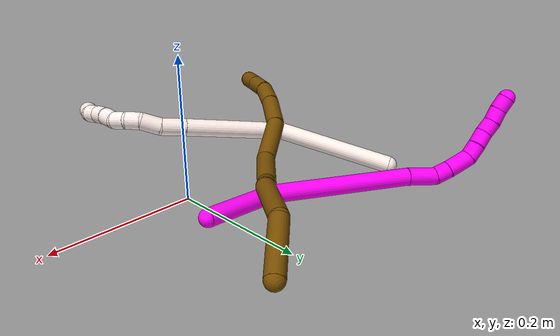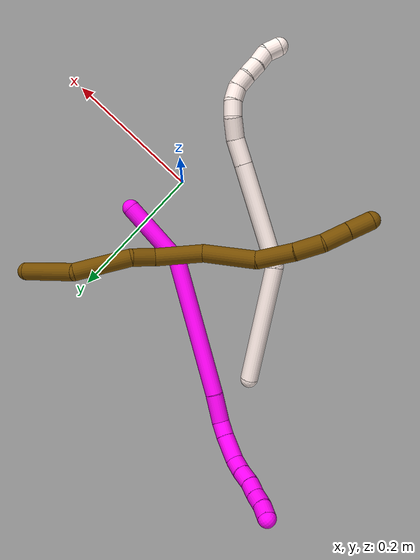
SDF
<sdf version="1.7">
 <world name="default">
  <model name="photoneo_s_sensor">
   <static>1</static>
   <pose>0 0 2 1.57079 1.57079 3.14159</pose>
   <link name="link">
    <inertial><mass>0.1</mass></inertial>
    <sensor name="sensor" type="depth">
     <update_rate>30</update_rate>
     <camera>
      <horizontal_fov>1.22</horizontal_fov>
      <image><width>1920</width><height>1200</height><format>B8G8R8</format></image>
      <clip><near>0.1</near><far>4</far></clip>
      <depth_camera><output>points</output></depth_camera>
     </camera>
     <plugin name="camera_plugin" filename="libgazebo_ros_depth_camera.so">
      <baseline>0.2</baseline>
      <alwaysOn>1</alwaysOn>
      <updateRate>0.0</updateRate>
      <cameraName>camera_ir</cameraName>
      <imageTopicName>/camera/color/image_raw</imageTopicName>
      <cameraInfoTopicName>/camera/color/camera_info</cameraInfoTopicName>
      <depthImageTopicName>/camera/depth/image_raw</depthImageTopicName>
      <depthImageCameraInfoTopicName>/camera/depth/camera_info</depthImageCameraInfoTopicName>
      <pointCloudTopicName>/camera/depth/points</pointCloudTopicName>
      <frameName>fr_optical</frameName>
      <pointCloudCutoff>0.1</pointCloudCutoff>
      <pointCloudCutoffMax>2.0</pointCloudCutoffMax>
      <distortionK1>0</distortionK1>
      <distortionK2>0</distortionK2>
      <distortionK3>0</distortionK3>
      <distortionT1>0</distortionT1>
      <distortionT2>0</distortionT2>
      <CxPrime>0</CxPrime>
      <Cx>0</Cx>
      <Cy>0</Cy>
      <focalLength>0</focalLength>
      <hackBaseline>0</hackBaseline>
     </plugin>
    </sensor>
   </link>
  </model>
  <model name="bin">
   <static>1</static>
   <link name="bottom">
    <collision name="collision-bottom">
     <pose>0 0 -0.01 0 -0 0</pose>
     <geometry><box><size>0.8 0.6 0.02</size></box></geometry>
     <surface>
      <friction><ode><mu>100</mu><mu2>100</mu2></ode></friction>
      <contact><collide_bitmask>65535</collide_bitmask></contact>
     </surface>
    </collision>
   </link>
   <link name="west_wall">
    <collision name="collision-west_wall">
     <pose>-0.41 0 0.1 0 -0 0</pose>
     <geometry><box><size>0.02 0.6 0.2</size></box></geometry>
     <surface>
      <friction><ode><mu>100</mu><mu2>100</mu2></ode></friction>
      <contact><collide_bitmask>65535</collide_bitmask></contact>
     </surface>
    </collision>
   </link>
   <link name="east_wall">
    <collision name="collision-east_wall">
     <pose>0.41 0 0.1 0 -0 0</pose>
     <geometry><box><size>0.02 0.6 0.2</size></box></geometry>
     <surface>
      <friction><ode><mu>100</mu><mu2>100</mu2></ode></friction>
      <contact><collide_bitmask>65535</collide_bitmask></contact>
     </surface>
    </collision>
   </link>
   <link name="south_wall">
    <collision name="collision-south_wall">
     <pose>0 -0.31 0.1 0 -0 0</pose>
     <geometry><box><size>0.8 0.02 0.2</size></box></geometry>
     <surface>
      <friction><ode><mu>100</mu><mu2>100</mu2></ode></friction>
      <contact><collide_bitmask>65535</collide_bitmask></contact>
     </surface>
    </collision>
   </link>
   <link name="north_wall">
    <collision name="collision-north_wall">
     <pose>0 0.31 0.1 0 -0 0</pose>
     <geometry><box><size>0.8 0.02 0.2</size></box></geometry>
     <surface>
      <friction><ode><mu>100</mu><mu2>100</mu2></ode></friction>
      <contact><collide_bitmask>65535</collide_bitmask></contact>
     </surface>
    </collision>
   </link>
  </model>
  <model name="10">
   <static>0</static>
   <link name="10">
    <collision name="collision-cylinder-e_1_1_4">
     <pose>-0.000107 0.005741 0.049362 -0.115773 -0.002162 0.000125</pose>
     <geometry><cylinder><radius>0.0125</radius><length>0.09939</length></cylinder></geometry>
     <surface>
      <friction><ode><mu>1.16</mu><mu2>1.16</mu2><slip1>0</slip1><slip2>0</slip2></ode></friction>
      <contact><ode><kp>1e+06</kp><kd>1</kd><max_vel>0</max_vel><min_depth>0.001</min_depth></ode></contact>
     </surface>
    </collision>
    <visual name="visual-cylinder-e_1_1_4">
     <pose>-0.000107 0.005741 0.049362 -0.115773 -0.002162 0.000125</pose>
     <geometry><cylinder><radius>0.0125</radius><length>0.09939</length></cylinder></geometry>
     <material><ambient>1 0 0.964706 1</ambient></material>
    </visual>
    <collision name="collision-cylinder-e_2_4_5">
     <pose>-0.043969 0.027483 0.186464 -0.180394 -0.456088 0.041974</pose>
     <geometry><cylinder><radius>0.0125</radius><length>0.198681</length></cylinder></geometry>
     <surface>
      <friction><ode><mu>1.16</mu><mu2>1.16</mu2><slip1>0</slip1><slip2>0</slip2></ode></friction>
      <contact><ode><kp>1e+06</kp><kd>1</kd><max_vel>0</max_vel><min_depth>0.001</min_depth></ode></contact>
     </surface>
    </collision>
    <visual name="visual-cylinder-e_2_4_5">
     <pose>-0.043969 0.027483 0.186464 -0.180394 -0.456088 0.041974</pose>
     <geometry><cylinder><radius>0.0125</radius><length>0.198681</length></cylinder></geometry>
     <material><ambient>1 0 0.964706 1</ambient></material>
    </visual>
    <collision name="collision-cylinder-e_3_5_6">
     <pose>-0.097834 0.044969 0.292385 -0.081511 -0.506141 0.021091</pose>
     <geometry><cylinder><radius>0.0125</radius><length>0.041715</length></cylinder></geometry>
     <surface>
      <friction><ode><mu>1.16</mu><mu2>1.16</mu2><slip1>0</slip1><slip2>0</slip2></ode></friction>
      <contact><ode><kp>1e+06</kp><kd>1</kd><max_vel>0</max_vel><min_depth>0.001</min_depth></ode></contact>
     </surface>
    </collision>
    <visual name="visual-cylinder-e_3_5_6">
     <pose>-0.097834 0.044969 0.292385 -0.081511 -0.506141 0.021091</pose>
     <geometry><cylinder><radius>0.0125</radius><length>0.041715</length></cylinder></geometry>
     <material><ambient>1 0 0.964706 1</ambient></material>
    </visual>
    <collision name="collision-cylinder-e_4_6_7">
     <pose>-0.111697 0.051645 0.319338 -0.534273 -0.352637 0.097444</pose>
     <geometry><cylinder><radius>0.0125</radius><length>0.021722</length></cylinder></geometry>
     <surface>
      <friction><ode><mu>1.16</mu><mu2>1.16</mu2><slip1>0</slip1><slip2>0</slip2></ode></friction>
      <contact><ode><kp>1e+06</kp><kd>1</kd><max_vel>0</max_vel><min_depth>0.001</min_depth></ode></contact>
     </surface>
    </collision>
    <visual name="visual-cylinder-e_4_6_7">
     <pose>-0.111697 0.051645 0.319338 -0.534273 -0.352637 0.097444</pose>
     <geometry><cylinder><radius>0.0125</radius><length>0.021722</length></cylinder></geometry>
     <material><ambient>1 0 0.964706 1</ambient></material>
    </visual>
    <collision name="collision-cylinder-e_5_7_8">
     <pose>-0.120137 0.066098 0.342707 -0.565451 -0.264874 0.077362</pose>
     <geometry><cylinder><radius>0.0125</radius><length>0.035824</length></cylinder></geometry>
     <surface>
      <friction><ode><mu>1.16</mu><mu2>1.16</mu2><slip1>0</slip1><slip2>0</slip2></ode></friction>
      <contact><ode><kp>1e+06</kp><kd>1</kd><max_vel>0</max_vel><min_depth>0.001</min_depth></ode></contact>
     </surface>
    </collision>
    <visual name="visual-cylinder-e_5_7_8">
     <pose>-0.120137 0.066098 0.342707 -0.565451 -0.264874 0.077362</pose>
     <geometry><cylinder><radius>0.0125</radius><length>0.035824</length></cylinder></geometry>
     <material><ambient>1 0 0.964706 1</ambient></material>
    </visual>
    <collision name="collision-cylinder-e_6_8_9">
     <pose>-0.124969 0.083954 0.363549 -0.942384 -0.013476 0.006865</pose>
     <geometry><cylinder><radius>0.0125</radius><length>0.021249</length></cylinder></geometry>
     <surface>
      <friction><ode><mu>1.16</mu><mu2>1.16</mu2><slip1>0</slip1><slip2>0</slip2></ode></friction>
      <contact><ode><kp>1e+06</kp><kd>1</kd><max_vel>0</max_vel><min_depth>0.001</min_depth></ode></contact>
     </surface>
    </collision>
    <visual name="visual-cylinder-e_6_8_9">
     <pose>-0.124969 0.083954 0.363549 -0.942384 -0.013476 0.006865</pose>
     <geometry><cylinder><radius>0.0125</radius><length>0.021249</length></cylinder></geometry>
     <material><ambient>1 0 0.964706 1</ambient></material>
    </visual>
    <collision name="collision-cylinder-e_7_9_10">
     <pose>-0.124248 0.100671 0.376458 -0.88372 0.08204 -0.038826</pose>
     <geometry><cylinder><radius>0.0125</radius><length>0.021084</length></cylinder></geometry>
     <surface>
      <friction><ode><mu>1.16</mu><mu2>1.16</mu2><slip1>0</slip1><slip2>0</slip2></ode></friction>
      <contact><ode><kp>1e+06</kp><kd>1</kd><max_vel>0</max_vel><min_depth>0.001</min_depth></ode></contact>
     </surface>
    </collision>
    <visual name="visual-cylinder-e_7_9_10">
     <pose>-0.124248 0.100671 0.376458 -0.88372 0.08204 -0.038826</pose>
     <geometry><cylinder><radius>0.0125</radius><length>0.021084</length></cylinder></geometry>
     <material><ambient>1 0 0.964706 1</ambient></material>
    </visual>
    <collision name="collision-cylinder-e_8_10_11">
     <pose>-0.124261 0.116955 0.388915 -0.953529 -0.087348 0.045137</pose>
     <geometry><cylinder><radius>0.0125</radius><length>0.020094</length></cylinder></geometry>
     <surface>
      <friction><ode><mu>1.16</mu><mu2>1.16</mu2><slip1>0</slip1><slip2>0</slip2></ode></friction>
      <contact><ode><kp>1e+06</kp><kd>1</kd><max_vel>0</max_vel><min_depth>0.001</min_depth></ode></contact>
     </surface>
    </collision>
    <visual name="visual-cylinder-e_8_10_11">
     <pose>-0.124261 0.116955 0.388915 -0.953529 -0.087348 0.045137</pose>
     <geometry><cylinder><radius>0.0125</radius><length>0.020094</length></cylinder></geometry>
     <material><ambient>1 0 0.964706 1</ambient></material>
    </visual>
    <collision name="collision-cylinder-e_9_11_12">
     <pose>-0.124605 0.133967 0.399441 -1.07975 0.053011 -0.031772</pose>
     <geometry><cylinder><radius>0.0125</radius><length>0.0201</length></cylinder></geometry>
     <surface>
      <friction><ode><mu>1.16</mu><mu2>1.16</mu2><slip1>0</slip1><slip2>0</slip2></ode></friction>
      <contact><ode><kp>1e+06</kp><kd>1</kd><max_vel>0</max_vel><min_depth>0.001</min_depth></ode></contact>
     </surface>
    </collision>
    <visual name="visual-cylinder-e_9_11_12">
     <pose>-0.124605 0.133967 0.399441 -1.07975 0.053011 -0.031772</pose>
     <geometry><cylinder><radius>0.0125</radius><length>0.0201</length></cylinder></geometry>
     <material><ambient>1 0 0.964706 1</ambient></material>
    </visual>
    <collision name="collision-cylinder-e_10_12_2">
     <pose>-0.125238 0.15173 0.408715 -1.09954 -0.11602 0.071146</pose>
     <geometry><cylinder><radius>0.0125</radius><length>0.020141</length></cylinder></geometry>
     <surface>
      <friction><ode><mu>1.16</mu><mu2>1.16</mu2><slip1>0</slip1><slip2>0</slip2></ode></friction>
      <contact><ode><kp>1e+06</kp><kd>1</kd><max_vel>0</max_vel><min_depth>0.001</min_depth></ode></contact>
     </surface>
    </collision>
    <visual name="visual-cylinder-e_10_12_2">
     <pose>-0.125238 0.15173 0.408715 -1.09954 -0.11602 0.071146</pose>
     <geometry><cylinder><radius>0.0125</radius><length>0.020141</length></cylinder></geometry>
     <material><ambient>1 0 0.964706 1</ambient></material>
    </visual>
    <collision name="collision-sphere-2">
     <pose>-0.126404 0.160642 0.413256 0 -0 0</pose>
     <geometry><sphere><radius>0.0125</radius></sphere></geometry>
     <surface>
      <friction><ode><mu>1.16</mu><mu2>1.16</mu2><slip1>0</slip1><slip2>0</slip2></ode></friction>
      <contact><ode><kp>1e+06</kp><kd>1</kd><max_vel>0</max_vel><min_depth>0.001</min_depth></ode></contact>
     </surface>
    </collision>
    <visual name="visual-sphere-2">
     <pose>-0.126404 0.160642 0.413256 0 -0 0</pose>
     <geometry><sphere><radius>0.0125</radius></sphere></geometry>
     <material><ambient>1 0 0.964706 1</ambient></material>
    </visual>
    <collision name="collision-sphere-12">
     <pose>-0.124073 0.142817 0.404173 0 -0 0</pose>
     <geometry><sphere><radius>0.0125</radius></sphere></geometry>
     <surface>
      <friction><ode><mu>1.16</mu><mu2>1.16</mu2><slip1>0</slip1><slip2>0</slip2></ode></friction>
      <contact><ode><kp>1e+06</kp><kd>1</kd><max_vel>0</max_vel><min_depth>0.001</min_depth></ode></contact>
     </surface>
    </collision>
    <visual name="visual-sphere-12">
     <pose>-0.124073 0.142817 0.404173 0 -0 0</pose>
     <geometry><sphere><radius>0.0125</radius></sphere></geometry>
     <material><ambient>1 0 0.964706 1</ambient></material>
    </visual>
    <collision name="collision-sphere-11">
     <pose>-0.125138 0.125117 0.394709 0 -0 0</pose>
     <geometry><sphere><radius>0.0125</radius></sphere></geometry>
     <surface>
      <friction><ode><mu>1.16</mu><mu2>1.16</mu2><slip1>0</slip1><slip2>0</slip2></ode></friction>
      <contact><ode><kp>1e+06</kp><kd>1</kd><max_vel>0</max_vel><min_depth>0.001</min_depth></ode></contact>
     </surface>
    </collision>
    <visual name="visual-sphere-11">
     <pose>-0.125138 0.125117 0.394709 0 -0 0</pose>
     <geometry><sphere><radius>0.0125</radius></sphere></geometry>
     <material><ambient>1 0 0.964706 1</ambient></material>
    </visual>
    <collision name="collision-sphere-10">
     <pose>-0.123385 0.108794 0.383122 0 -0 0</pose>
     <geometry><sphere><radius>0.0125</radius></sphere></geometry>
     <surface>
      <friction><ode><mu>1.16</mu><mu2>1.16</mu2><slip1>0</slip1><slip2>0</slip2></ode></friction>
      <contact><ode><kp>1e+06</kp><kd>1</kd><max_vel>0</max_vel><min_depth>0.001</min_depth></ode></contact>
     </surface>
    </collision>
    <visual name="visual-sphere-10">
     <pose>-0.123385 0.108794 0.383122 0 -0 0</pose>
     <geometry><sphere><radius>0.0125</radius></sphere></geometry>
     <material><ambient>1 0 0.964706 1</ambient></material>
    </visual>
    <collision name="collision-sphere-9">
     <pose>-0.125112 0.092548 0.369794 0 -0 0</pose>
     <geometry><sphere><radius>0.0125</radius></sphere></geometry>
     <surface>
      <friction><ode><mu>1.16</mu><mu2>1.16</mu2><slip1>0</slip1><slip2>0</slip2></ode></friction>
      <contact><ode><kp>1e+06</kp><kd>1</kd><max_vel>0</max_vel><min_depth>0.001</min_depth></ode></contact>
     </surface>
    </collision>
    <visual name="visual-sphere-9">
     <pose>-0.125112 0.092548 0.369794 0 -0 0</pose>
     <geometry><sphere><radius>0.0125</radius></sphere></geometry>
     <material><ambient>1 0 0.964706 1</ambient></material>
    </visual>
    <collision name="collision-sphere-4">
     <pose>-0.000215 0.011481 0.098725 0 -0 0</pose>
     <geometry><sphere><radius>0.0125</radius></sphere></geometry>
     <surface>
      <friction><ode><mu>1.16</mu><mu2>1.16</mu2><slip1>0</slip1><slip2>0</slip2></ode></friction>
      <contact><ode><kp>1e+06</kp><kd>1</kd><max_vel>0</max_vel><min_depth>0.001</min_depth></ode></contact>
     </surface>
    </collision>
    <visual name="visual-sphere-4">
     <pose>-0.000215 0.011481 0.098725 0 -0 0</pose>
     <geometry><sphere><radius>0.0125</radius></sphere></geometry>
     <material><ambient>1 0 0.964706 1</ambient></material>
    </visual>
    <collision name="collision-sphere-1">
     <geometry><sphere><radius>0.0125</radius></sphere></geometry>
     <surface>
      <friction><ode><mu>1.16</mu><mu2>1.16</mu2><slip1>0</slip1><slip2>0</slip2></ode></friction>
      <contact><ode><kp>1e+06</kp><kd>1</kd><max_vel>0</max_vel><min_depth>0.001</min_depth></ode></contact>
     </surface>
    </collision>
    <visual name="visual-sphere-1">
     <geometry><sphere><radius>0.0125</radius></sphere></geometry>
     <material><ambient>1 0 0.964706 1</ambient></material>
    </visual>
    <collision name="collision-sphere-8">
     <pose>-0.124826 0.07536 0.357304 0 -0 0</pose>
     <geometry><sphere><radius>0.0125</radius></sphere></geometry>
     <surface>
      <friction><ode><mu>1.16</mu><mu2>1.16</mu2><slip1>0</slip1><slip2>0</slip2></ode></friction>
      <contact><ode><kp>1e+06</kp><kd>1</kd><max_vel>0</max_vel><min_depth>0.001</min_depth></ode></contact>
     </surface>
    </collision>
    <visual name="visual-sphere-8">
     <pose>-0.124826 0.07536 0.357304 0 -0 0</pose>
     <geometry><sphere><radius>0.0125</radius></sphere></geometry>
     <material><ambient>1 0 0.964706 1</ambient></material>
    </visual>
    <collision name="collision-sphere-5">
     <pose>-0.087722 0.043484 0.274203 0 -0 0</pose>
     <geometry><sphere><radius>0.0125</radius></sphere></geometry>
     <surface>
      <friction><ode><mu>1.16</mu><mu2>1.16</mu2><slip1>0</slip1><slip2>0</slip2></ode></friction>
      <contact><ode><kp>1e+06</kp><kd>1</kd><max_vel>0</max_vel><min_depth>0.001</min_depth></ode></contact>
     </surface>
    </collision>
    <visual name="visual-sphere-5">
     <pose>-0.087722 0.043484 0.274203 0 -0 0</pose>
     <geometry><sphere><radius>0.0125</radius></sphere></geometry>
     <material><ambient>1 0 0.964706 1</ambient></material>
    </visual>
    <collision name="collision-sphere-6">
     <pose>-0.107946 0.046455 0.310566 0 -0 0</pose>
     <geometry><sphere><radius>0.0125</radius></sphere></geometry>
     <surface>
      <friction><ode><mu>1.16</mu><mu2>1.16</mu2><slip1>0</slip1><slip2>0</slip2></ode></friction>
      <contact><ode><kp>1e+06</kp><kd>1</kd><max_vel>0</max_vel><min_depth>0.001</min_depth></ode></contact>
     </surface>
    </collision>
    <visual name="visual-sphere-6">
     <pose>-0.107946 0.046455 0.310566 0 -0 0</pose>
     <geometry><sphere><radius>0.0125</radius></sphere></geometry>
     <material><ambient>1 0 0.964706 1</ambient></material>
    </visual>
    <collision name="collision-sphere-7">
     <pose>-0.115448 0.056835 0.328111 0 -0 0</pose>
     <geometry><sphere><radius>0.0125</radius></sphere></geometry>
     <surface>
      <friction><ode><mu>1.16</mu><mu2>1.16</mu2><slip1>0</slip1><slip2>0</slip2></ode></friction>
      <contact><ode><kp>1e+06</kp><kd>1</kd><max_vel>0</max_vel><min_depth>0.001</min_depth></ode></contact>
     </surface>
    </collision>
    <visual name="visual-sphere-7">
     <pose>-0.115448 0.056835 0.328111 0 -0 0</pose>
     <geometry><sphere><radius>0.0125</radius></sphere></geometry>
     <material><ambient>1 0 0.964706 1</ambient></material>
    </visual>
    <inertial>
     <pose>-0.064713 0.046803 0.226203 0 -0 0</pose>
     <mass>0.5</mass>
     <inertia>
      <ixx>0.000716</ixx>
      <ixy>0</ixy>
      <ixz>0</ixz>
      <iyy>0.000793</iyy>
      <iyz>0</iyz>
      <izz>0.000203</izz>
     </inertia>
    </inertial>
   </link>
   <pose>0.026981 0.078748 0.012153 1.68454 -0.098855 -1.65688</pose>
  </model>
  <model name="11">
   <static>0</static>
   <link name="11">
    <collision name="collision-cylinder-e_1_1_4">
     <pose>0.016397 -0.036996 -0.073679 2.67625 0.196319 0.787721</pose>
     <geometry><cylinder><radius>0.0125</radius><length>0.168121</length></cylinder></geometry>
     <surface>
      <friction><ode><mu>1.16</mu><mu2>1.16</mu2><slip1>0</slip1><slip2>0</slip2></ode></friction>
      <contact><ode><kp>1e+06</kp><kd>1</kd><max_vel>0</max_vel><min_depth>0.001</min_depth></ode></contact>
     </surface>
    </collision>
    <visual name="visual-cylinder-e_1_1_4">
     <pose>0.016397 -0.036996 -0.073679 2.67625 0.196319 0.787721</pose>
     <geometry><cylinder><radius>0.0125</radius><length>0.168121</length></cylinder></geometry>
     <material><ambient>1 0.933333 0.909804 1</ambient></material>
    </visual>
    <collision name="collision-cylinder-e_2_4_5">
     <pose>0.067675 -0.124252 -0.186891 2.23729 0.499375 0.966933</pose>
     <geometry><cylinder><radius>0.0125</radius><length>0.145681</length></cylinder></geometry>
     <surface>
      <friction><ode><mu>1.16</mu><mu2>1.16</mu2><slip1>0</slip1><slip2>0</slip2></ode></friction>
      <contact><ode><kp>1e+06</kp><kd>1</kd><max_vel>0</max_vel><min_depth>0.001</min_depth></ode></contact>
     </surface>
    </collision>
    <visual name="visual-cylinder-e_2_4_5">
     <pose>0.067675 -0.124252 -0.186891 2.23729 0.499375 0.966933</pose>
     <geometry><cylinder><radius>0.0125</radius><length>0.145681</length></cylinder></geometry>
     <material><ambient>1 0.933333 0.909804 1</ambient></material>
    </visual>
    <collision name="collision-cylinder-e_3_5_6">
     <pose>0.111262 -0.186657 -0.235875 2.23205 0.514815 0.987771</pose>
     <geometry><cylinder><radius>0.0125</radius><length>0.035359</length></cylinder></geometry>
     <surface>
      <friction><ode><mu>1.16</mu><mu2>1.16</mu2><slip1>0</slip1><slip2>0</slip2></ode></friction>
      <contact><ode><kp>1e+06</kp><kd>1</kd><max_vel>0</max_vel><min_depth>0.001</min_depth></ode></contact>
     </surface>
    </collision>
    <visual name="visual-cylinder-e_3_5_6">
     <pose>0.111262 -0.186657 -0.235875 2.23205 0.514815 0.987771</pose>
     <geometry><cylinder><radius>0.0125</radius><length>0.035359</length></cylinder></geometry>
     <material><ambient>1 0.933333 0.909804 1</ambient></material>
    </visual>
    <collision name="collision-cylinder-e_4_6_7">
     <pose>0.123716 -0.208973 -0.255032 2.3329 0.260608 0.594338</pose>
     <geometry><cylinder><radius>0.0125</radius><length>0.029103</length></cylinder></geometry>
     <surface>
      <friction><ode><mu>1.16</mu><mu2>1.16</mu2><slip1>0</slip1><slip2>0</slip2></ode></friction>
      <contact><ode><kp>1e+06</kp><kd>1</kd><max_vel>0</max_vel><min_depth>0.001</min_depth></ode></contact>
     </surface>
    </collision>
    <visual name="visual-cylinder-e_4_6_7">
     <pose>0.123716 -0.208973 -0.255032 2.3329 0.260608 0.594338</pose>
     <geometry><cylinder><radius>0.0125</radius><length>0.029103</length></cylinder></geometry>
     <material><ambient>1 0.933333 0.909804 1</ambient></material>
    </visual>
    <collision name="collision-cylinder-e_5_7_8">
     <pose>0.132128 -0.223849 -0.272839 2.61521 0.461873 1.435</pose>
     <geometry><cylinder><radius>0.0125</radius><length>0.020926</length></cylinder></geometry>
     <surface>
      <friction><ode><mu>1.16</mu><mu2>1.16</mu2><slip1>0</slip1><slip2>0</slip2></ode></friction>
      <contact><ode><kp>1e+06</kp><kd>1</kd><max_vel>0</max_vel><min_depth>0.001</min_depth></ode></contact>
     </surface>
    </collision>
    <visual name="visual-cylinder-e_5_7_8">
     <pose>0.132128 -0.223849 -0.272839 2.61521 0.461873 1.435</pose>
     <geometry><cylinder><radius>0.0125</radius><length>0.020926</length></cylinder></geometry>
     <material><ambient>1 0.933333 0.909804 1</ambient></material>
    </visual>
    <collision name="collision-cylinder-e_6_8_9">
     <pose>0.140904 -0.230029 -0.29004 2.98114 0.419562 2.41947</pose>
     <geometry><cylinder><radius>0.0125</radius><length>0.020192</length></cylinder></geometry>
     <surface>
      <friction><ode><mu>1.16</mu><mu2>1.16</mu2><slip1>0</slip1><slip2>0</slip2></ode></friction>
      <contact><ode><kp>1e+06</kp><kd>1</kd><max_vel>0</max_vel><min_depth>0.001</min_depth></ode></contact>
     </surface>
    </collision>
    <visual name="visual-cylinder-e_6_8_9">
     <pose>0.140904 -0.230029 -0.29004 2.98114 0.419562 2.41947</pose>
     <geometry><cylinder><radius>0.0125</radius><length>0.020192</length></cylinder></geometry>
     <material><ambient>1 0.933333 0.909804 1</ambient></material>
    </visual>
    <collision name="collision-cylinder-e_7_9_10">
     <pose>0.14538 -0.231232 -0.309295 -3.11501 0.035805 -1.86439</pose>
     <geometry><cylinder><radius>0.0125</radius><length>0.020327</length></cylinder></geometry>
     <surface>
      <friction><ode><mu>1.16</mu><mu2>1.16</mu2><slip1>0</slip1><slip2>0</slip2></ode></friction>
      <contact><ode><kp>1e+06</kp><kd>1</kd><max_vel>0</max_vel><min_depth>0.001</min_depth></ode></contact>
     </surface>
    </collision>
    <visual name="visual-cylinder-e_7_9_10">
     <pose>0.14538 -0.231232 -0.309295 -3.11501 0.035805 -1.86439</pose>
     <geometry><cylinder><radius>0.0125</radius><length>0.020327</length></cylinder></geometry>
     <material><ambient>1 0.933333 0.909804 1</ambient></material>
    </visual>
    <collision name="collision-cylinder-e_8_10_11">
     <pose>0.147132 -0.229253 -0.32928 -2.96955 0.138195 -1.35261</pose>
     <geometry><cylinder><radius>0.0125</radius><length>0.020151</length></cylinder></geometry>
     <surface>
      <friction><ode><mu>1.16</mu><mu2>1.16</mu2><slip1>0</slip1><slip2>0</slip2></ode></friction>
      <contact><ode><kp>1e+06</kp><kd>1</kd><max_vel>0</max_vel><min_depth>0.001</min_depth></ode></contact>
     </surface>
    </collision>
    <visual name="visual-cylinder-e_8_10_11">
     <pose>0.147132 -0.229253 -0.32928 -2.96955 0.138195 -1.35261</pose>
     <geometry><cylinder><radius>0.0125</radius><length>0.020151</length></cylinder></geometry>
     <material><ambient>1 0.933333 0.909804 1</ambient></material>
    </visual>
    <collision name="collision-cylinder-e_9_11_12">
     <pose>0.150971 -0.226317 -0.348755 -3.01497 0.246986 -2.19717</pose>
     <geometry><cylinder><radius>0.0125</radius><length>0.020049</length></cylinder></geometry>
     <surface>
      <friction><ode><mu>1.16</mu><mu2>1.16</mu2><slip1>0</slip1><slip2>0</slip2></ode></friction>
      <contact><ode><kp>1e+06</kp><kd>1</kd><max_vel>0</max_vel><min_depth>0.001</min_depth></ode></contact>
     </surface>
    </collision>
    <visual name="visual-cylinder-e_9_11_12">
     <pose>0.150971 -0.226317 -0.348755 -3.01497 0.246986 -2.19717</pose>
     <geometry><cylinder><radius>0.0125</radius><length>0.020049</length></cylinder></geometry>
     <material><ambient>1 0.933333 0.909804 1</ambient></material>
    </visual>
    <collision name="collision-cylinder-e_10_12_2">
     <pose>0.151985 -0.220944 -0.367434 -2.71151 -0.143554 0.636027</pose>
     <geometry><cylinder><radius>0.0125</radius><length>0.020091</length></cylinder></geometry>
     <surface>
      <friction><ode><mu>1.16</mu><mu2>1.16</mu2><slip1>0</slip1><slip2>0</slip2></ode></friction>
      <contact><ode><kp>1e+06</kp><kd>1</kd><max_vel>0</max_vel><min_depth>0.001</min_depth></ode></contact>
     </surface>
    </collision>
    <visual name="visual-cylinder-e_10_12_2">
     <pose>0.151985 -0.220944 -0.367434 -2.71151 -0.143554 0.636027</pose>
     <geometry><cylinder><radius>0.0125</radius><length>0.020091</length></cylinder></geometry>
     <material><ambient>1 0.933333 0.909804 1</ambient></material>
    </visual>
    <collision name="collision-sphere-2">
     <pose>0.150547 -0.216799 -0.376471 0 -0 0</pose>
     <geometry><sphere><radius>0.0125</radius></sphere></geometry>
     <surface>
      <friction><ode><mu>1.16</mu><mu2>1.16</mu2><slip1>0</slip1><slip2>0</slip2></ode></friction>
      <contact><ode><kp>1e+06</kp><kd>1</kd><max_vel>0</max_vel><min_depth>0.001</min_depth></ode></contact>
     </surface>
    </collision>
    <visual name="visual-sphere-2">
     <pose>0.150547 -0.216799 -0.376471 0 -0 0</pose>
     <geometry><sphere><radius>0.0125</radius></sphere></geometry>
     <material><ambient>1 0.933333 0.909804 1</ambient></material>
    </visual>
    <collision name="collision-sphere-12">
     <pose>0.153422 -0.22509 -0.358397 0 -0 0</pose>
     <geometry><sphere><radius>0.0125</radius></sphere></geometry>
     <surface>
      <friction><ode><mu>1.16</mu><mu2>1.16</mu2><slip1>0</slip1><slip2>0</slip2></ode></friction>
      <contact><ode><kp>1e+06</kp><kd>1</kd><max_vel>0</max_vel><min_depth>0.001</min_depth></ode></contact>
     </surface>
    </collision>
    <visual name="visual-sphere-12">
     <pose>0.153422 -0.22509 -0.358397 0 -0 0</pose>
     <geometry><sphere><radius>0.0125</radius></sphere></geometry>
     <material><ambient>1 0.933333 0.909804 1</ambient></material>
    </visual>
    <collision name="collision-sphere-11">
     <pose>0.14852 -0.227545 -0.339112 0 -0 0</pose>
     <geometry><sphere><radius>0.0125</radius></sphere></geometry>
     <surface>
      <friction><ode><mu>1.16</mu><mu2>1.16</mu2><slip1>0</slip1><slip2>0</slip2></ode></friction>
      <contact><ode><kp>1e+06</kp><kd>1</kd><max_vel>0</max_vel><min_depth>0.001</min_depth></ode></contact>
     </surface>
    </collision>
    <visual name="visual-sphere-11">
     <pose>0.14852 -0.227545 -0.339112 0 -0 0</pose>
     <geometry><sphere><radius>0.0125</radius></sphere></geometry>
     <material><ambient>1 0.933333 0.909804 1</ambient></material>
    </visual>
    <collision name="collision-sphere-10">
     <pose>0.145744 -0.230962 -0.319448 0 -0 0</pose>
     <geometry><sphere><radius>0.0125</radius></sphere></geometry>
     <surface>
      <friction><ode><mu>1.16</mu><mu2>1.16</mu2><slip1>0</slip1><slip2>0</slip2></ode></friction>
      <contact><ode><kp>1e+06</kp><kd>1</kd><max_vel>0</max_vel><min_depth>0.001</min_depth></ode></contact>
     </surface>
    </collision>
    <visual name="visual-sphere-10">
     <pose>0.145744 -0.230962 -0.319448 0 -0 0</pose>
     <geometry><sphere><radius>0.0125</radius></sphere></geometry>
     <material><ambient>1 0.933333 0.909804 1</ambient></material>
    </visual>
    <collision name="collision-sphere-9">
     <pose>0.145017 -0.231502 -0.299142 0 -0 0</pose>
     <geometry><sphere><radius>0.0125</radius></sphere></geometry>
     <surface>
      <friction><ode><mu>1.16</mu><mu2>1.16</mu2><slip1>0</slip1><slip2>0</slip2></ode></friction>
      <contact><ode><kp>1e+06</kp><kd>1</kd><max_vel>0</max_vel><min_depth>0.001</min_depth></ode></contact>
     </surface>
    </collision>
    <visual name="visual-sphere-9">
     <pose>0.145017 -0.231502 -0.299142 0 -0 0</pose>
     <geometry><sphere><radius>0.0125</radius></sphere></geometry>
     <material><ambient>1 0.933333 0.909804 1</ambient></material>
    </visual>
    <collision name="collision-sphere-4">
     <pose>0.032794 -0.073992 -0.147358 0 -0 0</pose>
     <geometry><sphere><radius>0.0125</radius></sphere></geometry>
     <surface>
      <friction><ode><mu>1.16</mu><mu2>1.16</mu2><slip1>0</slip1><slip2>0</slip2></ode></friction>
      <contact><ode><kp>1e+06</kp><kd>1</kd><max_vel>0</max_vel><min_depth>0.001</min_depth></ode></contact>
     </surface>
    </collision>
    <visual name="visual-sphere-4">
     <pose>0.032794 -0.073992 -0.147358 0 -0 0</pose>
     <geometry><sphere><radius>0.0125</radius></sphere></geometry>
     <material><ambient>1 0.933333 0.909804 1</ambient></material>
    </visual>
    <collision name="collision-sphere-1">
     <geometry><sphere><radius>0.0125</radius></sphere></geometry>
     <surface>
      <friction><ode><mu>1.16</mu><mu2>1.16</mu2><slip1>0</slip1><slip2>0</slip2></ode></friction>
      <contact><ode><kp>1e+06</kp><kd>1</kd><max_vel>0</max_vel><min_depth>0.001</min_depth></ode></contact>
     </surface>
    </collision>
    <visual name="visual-sphere-1">
     <geometry><sphere><radius>0.0125</radius></sphere></geometry>
     <material><ambient>1 0.933333 0.909804 1</ambient></material>
    </visual>
    <collision name="collision-sphere-8">
     <pose>0.136791 -0.228555 -0.280937 0 -0 0</pose>
     <geometry><sphere><radius>0.0125</radius></sphere></geometry>
     <surface>
      <friction><ode><mu>1.16</mu><mu2>1.16</mu2><slip1>0</slip1><slip2>0</slip2></ode></friction>
      <contact><ode><kp>1e+06</kp><kd>1</kd><max_vel>0</max_vel><min_depth>0.001</min_depth></ode></contact>
     </surface>
    </collision>
    <visual name="visual-sphere-8">
     <pose>0.136791 -0.228555 -0.280937 0 -0 0</pose>
     <geometry><sphere><radius>0.0125</radius></sphere></geometry>
     <material><ambient>1 0.933333 0.909804 1</ambient></material>
    </visual>
    <collision name="collision-sphere-5">
     <pose>0.102557 -0.174513 -0.226425 0 -0 0</pose>
     <geometry><sphere><radius>0.0125</radius></sphere></geometry>
     <surface>
      <friction><ode><mu>1.16</mu><mu2>1.16</mu2><slip1>0</slip1><slip2>0</slip2></ode></friction>
      <contact><ode><kp>1e+06</kp><kd>1</kd><max_vel>0</max_vel><min_depth>0.001</min_depth></ode></contact>
     </surface>
    </collision>
    <visual name="visual-sphere-5">
     <pose>0.102557 -0.174513 -0.226425 0 -0 0</pose>
     <geometry><sphere><radius>0.0125</radius></sphere></geometry>
     <material><ambient>1 0.933333 0.909804 1</ambient></material>
    </visual>
    <collision name="collision-sphere-6">
     <pose>0.119967 -0.198802 -0.245324 0 -0 0</pose>
     <geometry><sphere><radius>0.0125</radius></sphere></geometry>
     <surface>
      <friction><ode><mu>1.16</mu><mu2>1.16</mu2><slip1>0</slip1><slip2>0</slip2></ode></friction>
      <contact><ode><kp>1e+06</kp><kd>1</kd><max_vel>0</max_vel><min_depth>0.001</min_depth></ode></contact>
     </surface>
    </collision>
    <visual name="visual-sphere-6">
     <pose>0.119967 -0.198802 -0.245324 0 -0 0</pose>
     <geometry><sphere><radius>0.0125</radius></sphere></geometry>
     <material><ambient>1 0.933333 0.909804 1</ambient></material>
    </visual>
    <collision name="collision-sphere-7">
     <pose>0.127466 -0.219143 -0.26474 0 -0 0</pose>
     <geometry><sphere><radius>0.0125</radius></sphere></geometry>
     <surface>
      <friction><ode><mu>1.16</mu><mu2>1.16</mu2><slip1>0</slip1><slip2>0</slip2></ode></friction>
      <contact><ode><kp>1e+06</kp><kd>1</kd><max_vel>0</max_vel><min_depth>0.001</min_depth></ode></contact>
     </surface>
    </collision>
    <visual name="visual-sphere-7">
     <pose>0.127466 -0.219143 -0.26474 0 -0 0</pose>
     <geometry><sphere><radius>0.0125</radius></sphere></geometry>
     <material><ambient>1 0.933333 0.909804 1</ambient></material>
    </visual>
    <inertial>
     <pose>0.075521 -0.129256 -0.188477 0 -0 0</pose>
     <mass>0.5</mass>
     <inertia>
      <ixx>0.000901</ixx>
      <ixy>0</ixy>
      <ixz>0</ixz>
      <iyy>0.000218</iyy>
      <iyz>0</iyz>
      <izz>0.000125</izz>
     </inertia>
    </inertial>
   </link>
   <pose>-0.263869 0.140957 0.011468 -1.74383 0.851375 -0.067356</pose>
  </model>
  <model name="12">
   <static>0</static>
   <link name="12">
    <collision name="collision-cylinder-e_1_1_4">
     <pose>0.002061 -0.025211 -0.03104 2.45945 0.051491 0.144848</pose>
     <geometry><cylinder><radius>0.0125</radius><length>0.080083</length></cylinder></geometry>
     <surface>
      <friction><ode><mu>1.16</mu><mu2>1.16</mu2><slip1>0</slip1><slip2>0</slip2></ode></friction>
      <contact><ode><kp>1e+06</kp><kd>1</kd><max_vel>0</max_vel><min_depth>0.001</min_depth></ode></contact>
     </surface>
    </collision>
    <visual name="visual-cylinder-e_1_1_4">
     <pose>0.002061 -0.025211 -0.03104 2.45945 0.051491 0.144848</pose>
     <geometry><cylinder><radius>0.0125</radius><length>0.080083</length></cylinder></geometry>
     <material><ambient>0.466667 0.301961 0 1</ambient></material>
    </visual>
    <collision name="collision-cylinder-e_2_4_5">
     <pose>-0.005278 -0.060356 -0.100202 2.88668 -0.234228 -1.48544</pose>
     <geometry><cylinder><radius>0.0125</radius><length>0.081002</length></cylinder></geometry>
     <surface>
      <friction><ode><mu>1.16</mu><mu2>1.16</mu2><slip1>0</slip1><slip2>0</slip2></ode></friction>
      <contact><ode><kp>1e+06</kp><kd>1</kd><max_vel>0</max_vel><min_depth>0.001</min_depth></ode></contact>
     </surface>
    </collision>
    <visual name="visual-cylinder-e_2_4_5">
     <pose>-0.005278 -0.060356 -0.100202 2.88668 -0.234228 -1.48544</pose>
     <geometry><cylinder><radius>0.0125</radius><length>0.081002</length></cylinder></geometry>
     <material><ambient>0.466667 0.301961 0 1</ambient></material>
    </visual>
    <collision name="collision-cylinder-e_3_5_6">
     <pose>-0.024209 -0.074525 -0.151237 2.82464 -0.611601 -2.20437</pose>
     <geometry><cylinder><radius>0.0125</radius><length>0.033197</length></cylinder></geometry>
     <surface>
      <friction><ode><mu>1.16</mu><mu2>1.16</mu2><slip1>0</slip1><slip2>0</slip2></ode></friction>
      <contact><ode><kp>1e+06</kp><kd>1</kd><max_vel>0</max_vel><min_depth>0.001</min_depth></ode></contact>
     </surface>
    </collision>
    <visual name="visual-cylinder-e_3_5_6">
     <pose>-0.024209 -0.074525 -0.151237 2.82464 -0.611601 -2.20437</pose>
     <geometry><cylinder><radius>0.0125</radius><length>0.033197</length></cylinder></geometry>
     <material><ambient>0.466667 0.301961 0 1</ambient></material>
    </visual>
    <collision name="collision-cylinder-e_4_6_7">
     <pose>-0.041895 -0.093002 -0.193931 2.69554 -0.242222 -0.985029</pose>
     <geometry><cylinder><radius>0.0125</radius><length>0.068007</length></cylinder></geometry>
     <surface>
      <friction><ode><mu>1.16</mu><mu2>1.16</mu2><slip1>0</slip1><slip2>0</slip2></ode></friction>
      <contact><ode><kp>1e+06</kp><kd>1</kd><max_vel>0</max_vel><min_depth>0.001</min_depth></ode></contact>
     </surface>
    </collision>
    <visual name="visual-cylinder-e_4_6_7">
     <pose>-0.041895 -0.093002 -0.193931 2.69554 -0.242222 -0.985029</pose>
     <geometry><cylinder><radius>0.0125</radius><length>0.068007</length></cylinder></geometry>
     <material><ambient>0.466667 0.301961 0 1</ambient></material>
    </visual>
    <collision name="collision-cylinder-e_5_7_8">
     <pose>-0.052701 -0.133476 -0.251528 2.38548 -0.069193 -0.173849</pose>
     <geometry><cylinder><radius>0.0125</radius><length>0.076654</length></cylinder></geometry>
     <surface>
      <friction><ode><mu>1.16</mu><mu2>1.16</mu2><slip1>0</slip1><slip2>0</slip2></ode></friction>
      <contact><ode><kp>1e+06</kp><kd>1</kd><max_vel>0</max_vel><min_depth>0.001</min_depth></ode></contact>
     </surface>
    </collision>
    <visual name="visual-cylinder-e_5_7_8">
     <pose>-0.052701 -0.133476 -0.251528 2.38548 -0.069193 -0.173849</pose>
     <geometry><cylinder><radius>0.0125</radius><length>0.076654</length></cylinder></geometry>
     <material><ambient>0.466667 0.301961 0 1</ambient></material>
    </visual>
    <collision name="collision-cylinder-e_6_8_9">
     <pose>-0.053838 -0.171094 -0.302882 2.69108 0.057792 0.250949</pose>
     <geometry><cylinder><radius>0.0125</radius><length>0.052379</length></cylinder></geometry>
     <surface>
      <friction><ode><mu>1.16</mu><mu2>1.16</mu2><slip1>0</slip1><slip2>0</slip2></ode></friction>
      <contact><ode><kp>1e+06</kp><kd>1</kd><max_vel>0</max_vel><min_depth>0.001</min_depth></ode></contact>
     </surface>
    </collision>
    <visual name="visual-cylinder-e_6_8_9">
     <pose>-0.053838 -0.171094 -0.302882 2.69108 0.057792 0.250949</pose>
     <geometry><cylinder><radius>0.0125</radius><length>0.052379</length></cylinder></geometry>
     <material><ambient>0.466667 0.301961 0 1</ambient></material>
    </visual>
    <collision name="collision-cylinder-e_7_9_10">
     <pose>-0.051943 -0.188709 -0.344625 2.81188 0.019856 0.119215</pose>
     <geometry><cylinder><radius>0.0125</radius><length>0.038494</length></cylinder></geometry>
     <surface>
      <friction><ode><mu>1.16</mu><mu2>1.16</mu2><slip1>0</slip1><slip2>0</slip2></ode></friction>
      <contact><ode><kp>1e+06</kp><kd>1</kd><max_vel>0</max_vel><min_depth>0.001</min_depth></ode></contact>
     </surface>
    </collision>
    <visual name="visual-cylinder-e_7_9_10">
     <pose>-0.051943 -0.188709 -0.344625 2.81188 0.019856 0.119215</pose>
     <geometry><cylinder><radius>0.0125</radius><length>0.038494</length></cylinder></geometry>
     <material><ambient>0.466667 0.301961 0 1</ambient></material>
    </visual>
    <collision name="collision-cylinder-e_8_10_11">
     <pose>-0.0541 -0.196403 -0.380725 3.05995 -0.140482 -2.08968</pose>
     <geometry><cylinder><radius>0.0125</radius><length>0.036262</length></cylinder></geometry>
     <surface>
      <friction><ode><mu>1.16</mu><mu2>1.16</mu2><slip1>0</slip1><slip2>0</slip2></ode></friction>
      <contact><ode><kp>1e+06</kp><kd>1</kd><max_vel>0</max_vel><min_depth>0.001</min_depth></ode></contact>
     </surface>
    </collision>
    <visual name="visual-cylinder-e_8_10_11">
     <pose>-0.0541 -0.196403 -0.380725 3.05995 -0.140482 -2.08968</pose>
     <geometry><cylinder><radius>0.0125</radius><length>0.036262</length></cylinder></geometry>
     <material><ambient>0.466667 0.301961 0 1</ambient></material>
    </visual>
    <collision name="collision-cylinder-e_9_11_2">
     <pose>-0.059544 -0.199195 -0.415275 3.06206 -0.172126 -2.27737</pose>
     <geometry><cylinder><radius>0.0125</radius><length>0.033922</length></cylinder></geometry>
     <surface>
      <friction><ode><mu>1.16</mu><mu2>1.16</mu2><slip1>0</slip1><slip2>0</slip2></ode></friction>
      <contact><ode><kp>1e+06</kp><kd>1</kd><max_vel>0</max_vel><min_depth>0.001</min_depth></ode></contact>
     </surface>
    </collision>
    <visual name="visual-cylinder-e_9_11_2">
     <pose>-0.059544 -0.199195 -0.415275 3.06206 -0.172126 -2.27737</pose>
     <geometry><cylinder><radius>0.0125</radius><length>0.033922</length></cylinder></geometry>
     <material><ambient>0.466667 0.301961 0 1</ambient></material>
    </visual>
    <collision name="collision-sphere-2">
     <pose>-0.062449 -0.200523 -0.431932 0 -0 0</pose>
     <geometry><sphere><radius>0.0125</radius></sphere></geometry>
     <surface>
      <friction><ode><mu>1.16</mu><mu2>1.16</mu2><slip1>0</slip1><slip2>0</slip2></ode></friction>
      <contact><ode><kp>1e+06</kp><kd>1</kd><max_vel>0</max_vel><min_depth>0.001</min_depth></ode></contact>
     </surface>
    </collision>
    <visual name="visual-sphere-2">
     <pose>-0.062449 -0.200523 -0.431932 0 -0 0</pose>
     <geometry><sphere><radius>0.0125</radius></sphere></geometry>
     <material><ambient>0.466667 0.301961 0 1</ambient></material>
    </visual>
    <collision name="collision-sphere-11">
     <pose>-0.056639 -0.197867 -0.398617 0 -0 0</pose>
     <geometry><sphere><radius>0.0125</radius></sphere></geometry>
     <surface>
      <friction><ode><mu>1.16</mu><mu2>1.16</mu2><slip1>0</slip1><slip2>0</slip2></ode></friction>
      <contact><ode><kp>1e+06</kp><kd>1</kd><max_vel>0</max_vel><min_depth>0.001</min_depth></ode></contact>
     </surface>
    </collision>
    <visual name="visual-sphere-11">
     <pose>-0.056639 -0.197867 -0.398617 0 -0 0</pose>
     <geometry><sphere><radius>0.0125</radius></sphere></geometry>
     <material><ambient>0.466667 0.301961 0 1</ambient></material>
    </visual>
    <collision name="collision-sphere-10">
     <pose>-0.051561 -0.194939 -0.362832 0 -0 0</pose>
     <geometry><sphere><radius>0.0125</radius></sphere></geometry>
     <surface>
      <friction><ode><mu>1.16</mu><mu2>1.16</mu2><slip1>0</slip1><slip2>0</slip2></ode></friction>
      <contact><ode><kp>1e+06</kp><kd>1</kd><max_vel>0</max_vel><min_depth>0.001</min_depth></ode></contact>
     </surface>
    </collision>
    <visual name="visual-sphere-10">
     <pose>-0.051561 -0.194939 -0.362832 0 -0 0</pose>
     <geometry><sphere><radius>0.0125</radius></sphere></geometry>
     <material><ambient>0.466667 0.301961 0 1</ambient></material>
    </visual>
    <collision name="collision-sphere-9">
     <pose>-0.052326 -0.182478 -0.326418 0 -0 0</pose>
     <geometry><sphere><radius>0.0125</radius></sphere></geometry>
     <surface>
      <friction><ode><mu>1.16</mu><mu2>1.16</mu2><slip1>0</slip1><slip2>0</slip2></ode></friction>
      <contact><ode><kp>1e+06</kp><kd>1</kd><max_vel>0</max_vel><min_depth>0.001</min_depth></ode></contact>
     </surface>
    </collision>
    <visual name="visual-sphere-9">
     <pose>-0.052326 -0.182478 -0.326418 0 -0 0</pose>
     <geometry><sphere><radius>0.0125</radius></sphere></geometry>
     <material><ambient>0.466667 0.301961 0 1</ambient></material>
    </visual>
    <collision name="collision-sphere-4">
     <pose>0.004122 -0.050422 -0.06208 0 -0 0</pose>
     <geometry><sphere><radius>0.0125</radius></sphere></geometry>
     <surface>
      <friction><ode><mu>1.16</mu><mu2>1.16</mu2><slip1>0</slip1><slip2>0</slip2></ode></friction>
      <contact><ode><kp>1e+06</kp><kd>1</kd><max_vel>0</max_vel><min_depth>0.001</min_depth></ode></contact>
     </surface>
    </collision>
    <visual name="visual-sphere-4">
     <pose>0.004122 -0.050422 -0.06208 0 -0 0</pose>
     <geometry><sphere><radius>0.0125</radius></sphere></geometry>
     <material><ambient>0.466667 0.301961 0 1</ambient></material>
    </visual>
    <collision name="collision-sphere-1">
     <geometry><sphere><radius>0.0125</radius></sphere></geometry>
     <surface>
      <friction><ode><mu>1.16</mu><mu2>1.16</mu2><slip1>0</slip1><slip2>0</slip2></ode></friction>
      <contact><ode><kp>1e+06</kp><kd>1</kd><max_vel>0</max_vel><min_depth>0.001</min_depth></ode></contact>
     </surface>
    </collision>
    <visual name="visual-sphere-1">
     <geometry><sphere><radius>0.0125</radius></sphere></geometry>
     <material><ambient>0.466667 0.301961 0 1</ambient></material>
    </visual>
    <collision name="collision-sphere-8">
     <pose>-0.055351 -0.159709 -0.279345 0 -0 0</pose>
     <geometry><sphere><radius>0.0125</radius></sphere></geometry>
     <surface>
      <friction><ode><mu>1.16</mu><mu2>1.16</mu2><slip1>0</slip1><slip2>0</slip2></ode></friction>
      <contact><ode><kp>1e+06</kp><kd>1</kd><max_vel>0</max_vel><min_depth>0.001</min_depth></ode></contact>
     </surface>
    </collision>
    <visual name="visual-sphere-8">
     <pose>-0.055351 -0.159709 -0.279345 0 -0 0</pose>
     <geometry><sphere><radius>0.0125</radius></sphere></geometry>
     <material><ambient>0.466667 0.301961 0 1</ambient></material>
    </visual>
    <collision name="collision-sphere-5">
     <pose>-0.014678 -0.070289 -0.138324 0 -0 0</pose>
     <geometry><sphere><radius>0.0125</radius></sphere></geometry>
     <surface>
      <friction><ode><mu>1.16</mu><mu2>1.16</mu2><slip1>0</slip1><slip2>0</slip2></ode></friction>
      <contact><ode><kp>1e+06</kp><kd>1</kd><max_vel>0</max_vel><min_depth>0.001</min_depth></ode></contact>
     </surface>
    </collision>
    <visual name="visual-sphere-5">
     <pose>-0.014678 -0.070289 -0.138324 0 -0 0</pose>
     <geometry><sphere><radius>0.0125</radius></sphere></geometry>
     <material><ambient>0.466667 0.301961 0 1</ambient></material>
    </visual>
    <collision name="collision-sphere-6">
     <pose>-0.033739 -0.07876 -0.16415 0 -0 0</pose>
     <geometry><sphere><radius>0.0125</radius></sphere></geometry>
     <surface>
      <friction><ode><mu>1.16</mu><mu2>1.16</mu2><slip1>0</slip1><slip2>0</slip2></ode></friction>
      <contact><ode><kp>1e+06</kp><kd>1</kd><max_vel>0</max_vel><min_depth>0.001</min_depth></ode></contact>
     </surface>
    </collision>
    <visual name="visual-sphere-6">
     <pose>-0.033739 -0.07876 -0.16415 0 -0 0</pose>
     <geometry><sphere><radius>0.0125</radius></sphere></geometry>
     <material><ambient>0.466667 0.301961 0 1</ambient></material>
    </visual>
    <collision name="collision-sphere-7">
     <pose>-0.050051 -0.107243 -0.223712 0 -0 0</pose>
     <geometry><sphere><radius>0.0125</radius></sphere></geometry>
     <surface>
      <friction><ode><mu>1.16</mu><mu2>1.16</mu2><slip1>0</slip1><slip2>0</slip2></ode></friction>
      <contact><ode><kp>1e+06</kp><kd>1</kd><max_vel>0</max_vel><min_depth>0.001</min_depth></ode></contact>
     </surface>
    </collision>
    <visual name="visual-sphere-7">
     <pose>-0.050051 -0.107243 -0.223712 0 -0 0</pose>
     <geometry><sphere><radius>0.0125</radius></sphere></geometry>
     <material><ambient>0.466667 0.301961 0 1</ambient></material>
    </visual>
    <inertial>
     <pose>-0.033512 -0.112086 -0.210231 0 -0 0</pose>
     <mass>0.5</mass>
     <inertia>
      <ixx>3.5e-05</ixx>
      <ixy>0</ixy>
      <ixz>0</ixz>
      <iyy>-0.000178</iyy>
      <iyz>0</iyz>
      <izz>7.8e-05</izz>
     </inertia>
    </inertial>
   </link>
   <pose>0.072206 0.245646 0.022903 -1.70342 -1.04718 -0.1163</pose>
  </model>
 </world>
</sdf>
